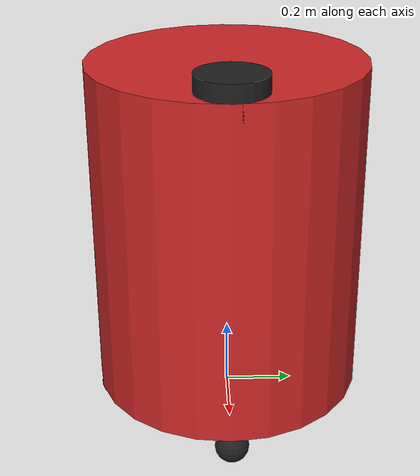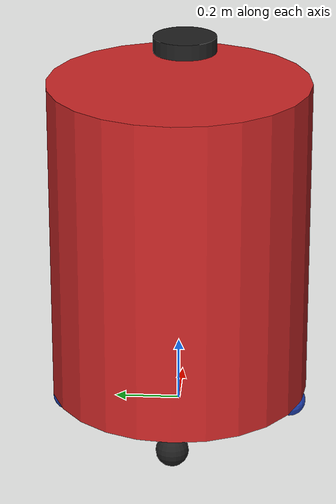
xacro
<?xml version="1.0"?>
<robot xmlns:xacro="http://www.ros.org/wiki/xacro" name="obstacle_bot">

    <xacro:include filename="inertial_macros.xacro"/>

    <xacro:macro name="obstacle_bot_common">
        <xacro:property name="chassis_length" value="1.0" scope="parent"/>
        <xacro:property name="chassis_radius" value="0.4" scope="parent"/>
        <xacro:property name="chassis_mass" value="10" scope="parent"/>
        <xacro:property name="wheel_radius" value="0.05" scope="parent"/>

    </xacro:macro>
    <xacro:obstacle_bot_common/>

    <!-- BASE LINK -->

    <link name="base_link">

    </link>

    <!-- CHASSIS LINK -->

    <joint name="chassis_joint" type="fixed">
        <parent link="base_link"/>
        <child link="chassis"/>
        <origin xyz="0 0 ${wheel_radius}" rpy="0 0 0"/>
    </joint>

    <link name="chassis">
        <visual>
            <origin xyz="0 0 ${chassis_length/2}"/>
            <geometry>
                <cylinder radius="${chassis_radius}" length="${chassis_length}"/>
            </geometry>
        </visual>
        <collision>
            <origin xyz="0 0 ${chassis_length/2}"/>
            <geometry>
                <cylinder radius="${chassis_radius}" length="${chassis_length}"/>
            </geometry>
        </collision>
        <xacro:inertial_cylinder mass="${chassis_mass}" length="${chassis_length}" radius="${chassis_radius}">
            <origin xyz="0 0 ${chassis_length/2}" rpy="0 0 0"/>
        </xacro:inertial_cylinder>
    </link>

    <gazebo reference="chassis">
        <material>Gazebo/Red</material>
    </gazebo>

    <!-- CASTER WHEEL FONT LINK -->

    <joint name="caster_wheel_font_joint" type="fixed">
        <parent link="base_link"/>
        <child link="caster_wheel_font"/>
        <origin xyz="${chassis_radius - wheel_radius} 0 0" rpy="0 0 0" />
    </joint>

    <link name="caster_wheel_font">
        <visual>
            <geometry>
                <sphere radius="${wheel_radius}"/>
            </geometry>
        </visual>
        <collision>
            <geometry>
                <sphere radius="${wheel_radius}"/>
            </geometry>
        </collision>
        <xacro:inertial_sphere mass="0.1" radius="${wheel_radius}">
            <origin xyz="0 0 0" rpy="0 0 0"/>
        </xacro:inertial_sphere>
    </link>

    <gazebo reference="caster_wheel_font">
        <material>Gazebo/Black</material>
        <mu1 value="0.001"/>
        <mu2 value="0.001"/>
    </gazebo>

    <!-- CASTER WHEEL BACK LINK -->

    <joint name="caster_wheel_back_joint" type="fixed">
        <parent link="base_link"/>
        <child link="caster_wheel_back"/>
        <origin xyz="-${chassis_radius - wheel_radius} 0 0" rpy="0 0 0" />
    </joint>

    <link name="caster_wheel_back">
        <visual>
            <geometry>
                <sphere radius="${wheel_radius}"/>
            </geometry>
        </visual>
        <collision>
            <geometry>
                <sphere radius="${wheel_radius}"/>
            </geometry>
        </collision>
        <xacro:inertial_sphere mass="0.1" radius="${wheel_radius}">
            <origin xyz="0 0 0" rpy="0 0 0"/>
        </xacro:inertial_sphere>
    </link>

    <gazebo reference="caster_wheel_back">
        <material>Gazebo/Black</material>
        <mu1 value="0.001"/>
        <mu2 value="0.001"/>
    </gazebo>

    <!-- LEFT WHEEL LINK -->

    <joint name="left_wheel_joint" type="continuous">
        <parent link="base_link"/>
        <child link="left_wheel"/>
        <origin xyz="0 ${chassis_radius - wheel_radius} 0" rpy="-${pi/2} 0 0" />
        <axis xyz="0 0 1"/>
    </joint>

    <link name="left_wheel">
        <visual>
            <geometry>
                <sphere radius="${wheel_radius}"/>
            </geometry>
        </visual>
        <collision>
            <geometry>
                <sphere radius="${wheel_radius}"/>
            </geometry>
        </collision>
        <xacro:inertial_sphere mass="0.1" radius="${wheel_radius}">
            <origin xyz="0 0 0" rpy="0 0 0"/>
        </xacro:inertial_sphere>
    </link>

    <gazebo reference="left_wheel">
        <material>Gazebo/Blue</material>
    </gazebo>

    <!-- RIGHT WHEEL LINK -->

    <joint name="right_wheel_joint" type="continuous">
        <parent link="base_link"/>
        <child link="right_wheel"/>
        <origin xyz="0 -${chassis_radius - wheel_radius} 0" rpy="${pi/2} 0 0" />
        <axis xyz="0 0 -1"/>
    </joint>

    <link name="right_wheel">
        <visual>
            <geometry>
                <sphere radius="${wheel_radius}"/>
            </geometry>
        </visual>
        <collision>
            <geometry>
                <sphere radius="${wheel_radius}"/>
            </geometry>
        </collision>
        <xacro:inertial_sphere mass="0.1" radius="${wheel_radius}">
            <origin xyz="0 0 0" rpy="0 0 0"/>
        </xacro:inertial_sphere>
    </link>

    <gazebo reference="right_wheel">
        <material>Gazebo/Blue</material>
    </gazebo>

    <!-- Font indicator link -->

    <joint name="font_indicator_joint" type="fixed">
        <parent link="chassis"/>
        <child link="font_indicator"/>
        <origin xyz="${chassis_radius - 0.1} 0 ${chassis_length}" rpy="0 0 0"/>
    </joint>

    <link name="font_indicator">
        <visual>
            <geometry>
                <cylinder radius="0.1" length="0.1"/>
            </geometry>
        </visual>
        <collision>
            <geometry>
                <cylinder radius="0.1" length="0.1"/>
            </geometry>
        </collision>
        <xacro:inertial_cylinder mass="0.1" length="0.1" radius="0.1">
            <origin xyz="0 0 0" rpy="0 0 0"/>
        </xacro:inertial_cylinder>
    </link>

    <gazebo reference="font_indicator">
        <material>Gazebo/Black</material>
    </gazebo>

    <gazebo>
        <plugin name="diff_drive" filename="libgazebo_ros_diff_drive.so">

            <!-- Wheel Information -->
            <left_joint>left_wheel_joint</left_joint>
            <right_joint>right_wheel_joint</right_joint>
            <wheel_separation>${(chassis_radius - wheel_radius)*2}</wheel_separation>
            <wheel_diameter>${2*wheel_radius}</wheel_diameter>

            <!-- Limits -->
            <max_wheel_torque>200</max_wheel_torque>
            <max_wheel_acceleration>10.0</max_wheel_acceleration>

            <!-- Output -->
            <odometry_frame>odom</odometry_frame>
            <robot_base_frame>base_link</robot_base_frame>

            <publish_odom>true</publish_odom>
            <publish_odom_tf>true</publish_odom_tf>
            <publish_wheel_tf>true</publish_wheel_tf>

        </plugin>
    </gazebo>

</robot>
